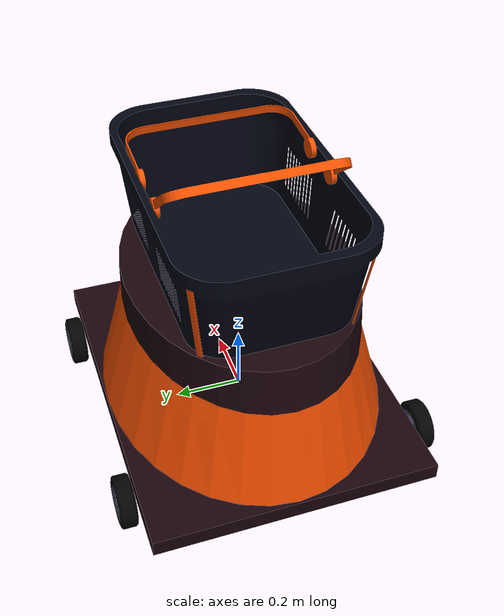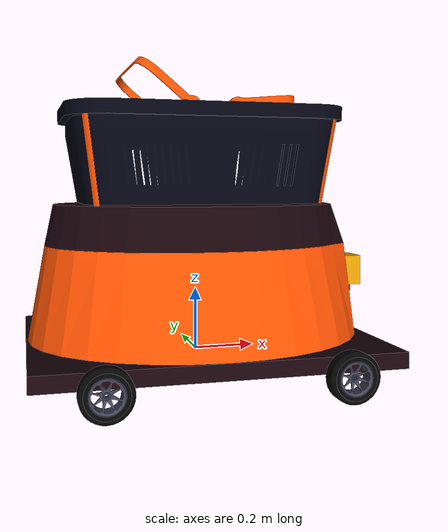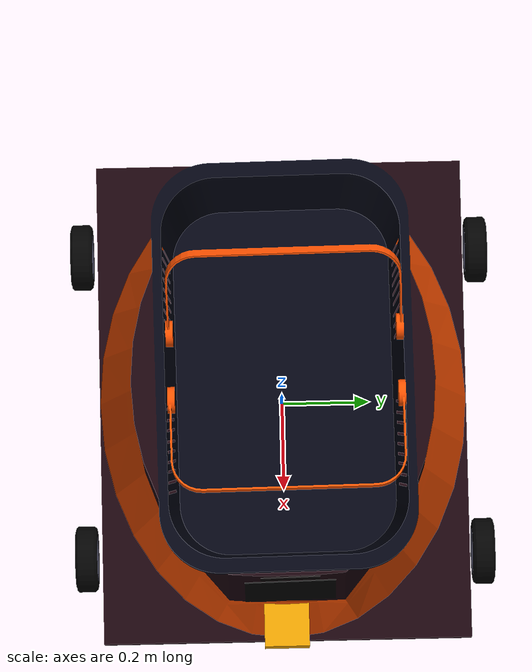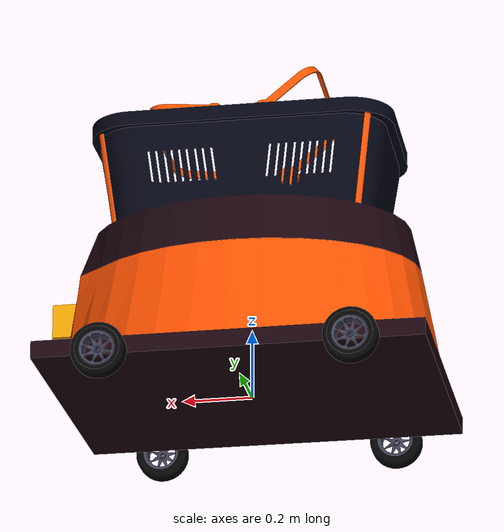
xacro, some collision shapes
<?xml version="1.0"?>

<robot name="basketbot" xmlns:xacro="http://www.ros.org/wiki/xacro">
  <xacro:include filename="$(find basketbot)/urdf/basketbot.gazebo" />

  <!--  VARIABLES -->
  <xacro:property name="chassis_length" value="1.1" />
  <xacro:property name="chassis_width" value="0.84" />
  <xacro:property name="chassis_height" value="0.8" />

  <xacro:property name="wheel_length" value="0.05" />
  <xacro:property name="wheel_radius" value="0.075" />
  <xacro:property name="wheel_mass" value="0.25" />
  <xacro:property name="wheel_x_offset" value="0.35" />
  <xacro:property name="wheel_y_offset" value="${(chassis_width/2) + (wheel_length/2)+0.01}" />
  <xacro:property name="wheel_z_offset" value="-${(wheel_radius)}" />
  <xacro:property name="wheel_inertia" value="0.005" />
  <xacro:property name="wheel_kp" value="1000000.0" />
  <xacro:property name="wheel_kd" value="100.0" />
  <xacro:property name="wheel_mu1" value="1" />
  <xacro:property name="wheel_mu2" value="1" />
  <xacro:property name="wheel_slip1" value="0.5" />
  <xacro:property name="wheel_slip2" value="0" />

  <!-- ROOT LINK and ROBOT CHASSIS -->
  <link name="robot_footprint"></link>

  <joint name="robot_footprint_joint" type="fixed">
    <origin xyz="0 0 0" rpy="0 0 0" />
    <parent link="robot_footprint" />
    <child link="chassis" />
  </joint>

  <link name="chassis">
    <pose>0 0 0.1 0 0 0</pose>

    <inertial>
      <mass value="10.0" />
      <origin xyz="0 0 0" rpy="0 0 0" />
      <inertia
        ixx="0.1" ixy="0" ixz="0"
        iyy="0.1" iyz="0"
        izz="0.1"
      />
    </inertial>

    <collision name="collision">
      <origin xyz="0 0 ${chassis_height/2}" rpy="0 0 0" />
      <geometry>
        <box size="${chassis_length} ${chassis_width} ${chassis_height}" />
      </geometry>
    </collision>

    <visual name="chassis_visual">
      <origin xyz="0 0 0" rpy="0 0 0" />
      <geometry>
        <mesh filename="package://basketbot/meshes/BasketBotModel.dae" />
      </geometry>
    </visual>
  </link>

  <!--  WHEELS  -->
  <joint type="continuous" name="wheel_left_front_joint">
    <origin xyz="${wheel_x_offset} ${wheel_y_offset} 0" rpy="0 0 0"/>
    <child link="wheel_left_front"/>
    <parent link="chassis"/>
    <axis xyz="0 1 0" />
    <limit effort="10000" velocity="1000"/>
    <dynamics damping="0.1" friction="1.0"/>
  </joint>
  <joint type="continuous" name="wheel_left_rear_joint">
    <origin xyz="-${wheel_x_offset} ${wheel_y_offset} 0" rpy="0 0 0"/>
    <child link="wheel_left_rear"/>
    <parent link="chassis"/>
    <axis xyz="0 1 0" />
    <limit effort="10000" velocity="1000"/>
    <dynamics damping="0.1" friction="1.0"/>
  </joint>
  <joint type="continuous" name="wheel_right_front_joint">
    <origin xyz="${wheel_x_offset} -${wheel_y_offset} 0" rpy="0 0 0"/>
    <child link="wheel_right_front"/>
    <parent link="chassis"/>
    <axis xyz="0 1 0" />
    <limit effort="10000" velocity="1000"/>
    <dynamics damping="0.1" friction="1.0"/>
  </joint>
  <joint type="continuous" name="wheel_right_rear_joint">
    <origin xyz="-${wheel_x_offset} -${wheel_y_offset} 0" rpy="0 0 0"/>
    <child link="wheel_right_rear"/>
    <parent link="chassis"/>
    <axis xyz="0 1 0" />
    <limit effort="10000" velocity="1000"/>
    <dynamics damping="0.1" friction="1.0"/>
  </joint>

  <link name="wheel_left_front">
    <visual name="wheel_left_front_visual">
      <origin xyz="0.0 0 -${wheel_radius}" rpy="0 0 ${pi}" />
      <geometry>
        <mesh filename="package://basketbot/meshes/wheel.dae" />
        <cylinder radius="${wheel_radius}" length="${wheel_length}" />
      </geometry>
    </visual>
    <collision name="wheel_left_front_collision">
      <origin xyz="0.0 0 0" rpy="0 ${pi/2} ${pi/2}" />
      <geometry>
        <cylinder radius="${wheel_radius}" length="${wheel_length}" />
      </geometry>
      <surface>
        <friction>
          <fdir1>1 0 0</fdir1>
          <kp>${wheel_kp}</kp>
          <kd>${wheel_kd}</kd>
          <mu>${wheel_mu1}</mu>
          <mu2>${wheel_mu2}</mu2>
          <slip1>${wheel_slip1}</slip1>
          <slip2>${wheel_slip2}</slip2>
        </friction>
      </surface>
    </collision>
    <inertial>
      <mass value="${wheel_mass}" />
      <origin xyz="0.0 0 0" rpy="0 ${pi/2} ${pi/2}" />
      <inertia
        ixx="${wheel_inertia}" ixy="0" ixz="0"
        iyy="${wheel_inertia}" iyz="0"
        izz="${wheel_inertia}"
      />
    </inertial>
  </link>

  <link name="wheel_left_rear">
    <visual name="wheel_left_rear_visual">
      <origin xyz="0.0 0 -${wheel_radius}" rpy="0 0 ${pi}" />
      <geometry>
        <mesh filename="package://basketbot/meshes/wheel.dae" />
      </geometry>
    </visual>

    <collision name="wheel_left_rear_collision">
      <origin xyz="0.0 0 0" rpy="0 ${pi/2} ${pi/2}" />
      <geometry>
        <cylinder radius="${wheel_radius}" length="${wheel_length}" />
      </geometry>
      <surface>
        <friction>
          <fdir1>1 0 0</fdir1>
          <kp>${wheel_kp}</kp>
          <kd>${wheel_kd}</kd>
          <mu>${wheel_mu1}</mu>
          <mu2>${wheel_mu2}</mu2>
          <slip1>${wheel_slip1}</slip1>
          <slip2>${wheel_slip2}</slip2>
        </friction>
      </surface>
    </collision>

    <inertial>
      <mass value="${wheel_mass}" />
      <origin xyz="0.0 0 0" rpy="0 ${pi/2} ${pi/2}" />
      <inertia
        ixx="${wheel_inertia}" ixy="0" ixz="0"
        iyy="${wheel_inertia}" iyz="0"
        izz="${wheel_inertia}"
      />
    </inertial>
  </link>

  <link name="wheel_right_front">
    <visual name="wheel_right_front_visual">
      <origin xyz="0.0 0 -${wheel_radius}" rpy="0 0 ${pi*2}" />
      <geometry>
      <mesh filename="package://basketbot/meshes/wheel.dae" />
      </geometry>
    </visual>

    <collision name="wheel_right_front_collision">
      <origin xyz="0.0 0 0" rpy="0 ${pi/2} ${pi/2}" />
      <geometry>
        <cylinder radius="${wheel_radius}" length="${wheel_length}" />
      </geometry>
      <surface>
        <friction>
          <fdir1>1 0 0</fdir1>
          <kp>${wheel_kp}</kp>
          <kd>${wheel_kd}</kd>
          <mu>${wheel_mu1}</mu>
          <mu2>${wheel_mu2}</mu2>
          <slip1>${wheel_slip1}</slip1>
          <slip2>${wheel_slip2}</slip2>
        </friction>
      </surface>
    </collision>

    <inertial>
      <mass value="${wheel_mass}" />
      <origin xyz="0.0 0 0" rpy="0 ${pi/2} ${pi/2}" />
      <inertia
        ixx="${wheel_inertia}" ixy="0" ixz="0"
        iyy="${wheel_inertia}" iyz="0"
        izz="${wheel_inertia}"
      />
    </inertial>
  </link>

  <link name="wheel_right_rear">
    <visual name="wheel_right_rear_visual">
      <origin xyz="0.0 0 -${wheel_radius}" rpy="0 0 ${pi*2}" />
      <geometry>
        <mesh filename="package://basketbot/meshes/wheel.dae" />
      </geometry>
    </visual>

    <collision name="wheel_right_rear_collision">
      <origin xyz="0.0 0 0" rpy="0 ${pi/2} ${pi/2}" />
      <geometry>
        <cylinder radius="${wheel_radius}" length="${wheel_length}" />
      </geometry>
      <surface>
        <friction>
          <fdir1>1 0 0</fdir1>
          <kp>${wheel_kp}</kp>
          <kd>${wheel_kd}</kd>
          <mu>${wheel_mu1}</mu>
          <mu2>${wheel_mu2}</mu2>
          <slip1>${wheel_slip1}</slip1>
          <slip2>${wheel_slip2}</slip2>
        </friction>
      </surface>
    </collision>

    <inertial>
      <mass value="${wheel_mass}" />
      <origin xyz="0.0 0 0" rpy="0 ${pi/2} ${pi/2}" />
      <inertia
        ixx="${wheel_inertia}" ixy="0" ixz="0"
        iyy="${wheel_inertia}" iyz="0"
        izz="${wheel_inertia}"
      />
    </inertial>
  </link>

  <!-- SENSORS  -->
  <joint type="fixed" name="camera_joint">
    <origin xyz="0.525 0 0.2" rpy="0 0 0" />
    <child link="camera" />
    <parent link="chassis" />
    <axis xyz="0 1 0" />
  </joint>
  <link name="camera">
    <visual name="camera_visual">
      <origin xyz="0 0 0" rpy="0 0 0"/>
      <geometry>
        <box size="0.05 0.05 0.05" />
      </geometry>
    </visual>

    <collision name="camera_collision">
      <origin xyz="0 0 0" rpy="0 0 0" />
      <geometry>
        <box size="0.05 0.05 0.05" />
      </geometry>
    </collision>

    <inertial>
      <mass value="0.1" />
      <origin xyz="0 0 0" rpy="0 0 0" />
      <box_inertia m="0.1" x="0.05" y="0.05" z="0.05" />
      <inertia
        ixx="1e-6" ixy="0" ixz="0"
        iyy="1e-6" iyz="0"
        izz="1e-6"
      />
    </inertial>
  </link>

  <joint type="fixed" name="camera_optical_joint">
    <origin xyz="0 0 0" rpy="-${pi/2} 0 -${pi/2}" />
    <child link="camera_link_optical" />
    <parent link="camera" />
  </joint>
  <link name="camera_link_optical">
    <visual name="camera_visual">
      <origin xyz="0 0 0" rpy="0 0 0"/>
      <geometry>
        <box size="0.05 0.05 0.05" />
      </geometry>
    </visual>

    <collision name="camera_collision">
      <origin xyz="0 0 0" rpy="0 0 0" />
      <geometry>
        <box size="0.05 0.05 0.05" />
      </geometry>
    </collision>

    <inertial>
      <mass value="0.1" />
      <origin xyz="0 0 0" rpy="0 0 0" />
      <box_inertia m="0.1" x="0.05" y="0.05" z="0.05" />
      <inertia
        ixx="1e-6" ixy="0" ixz="0"
        iyy="1e-6" iyz="0"
        izz="1e-6"
      />
    </inertial>
  </link>

  <joint type="fixed" name="hokuyo_joint">
    <origin xyz="0.525 0 0.25" rpy="0 0 0" />
    <child link="hokuyo" />
    <parent link="chassis" />
    <axis xyz="0 1 0" />
  </joint>
  <link name="hokuyo">
    <visual name="hokuyo_visual">
      <origin xyz="0 0 0" rpy="0 0 0" />
      <geometry>
        <mesh filename="package://basketbot/meshes/hokuyo.dae" />
      </geometry>
    </visual>

    <collision name="hokuyo_collision">
      <origin xyz="0 0 0" rpy="0 0 0" />
      <geometry>
        <box size="0.1 0.1 0.1" />
      </geometry>
    </collision>

    <inertial>
      <mass value="1e-5" />
      <origin xyz="0 0 0" rpy="0 0 0" />
      <inertia
        ixx="1e-6" ixy="0" ixz="0"
        iyy="1e-6" iyz="0"
        izz="1e-6"
      />
    </inertial>
  </link>

  <gazebo reference="camera">
    <material>Gazebo/Red</material>
  </gazebo>
</robot>
